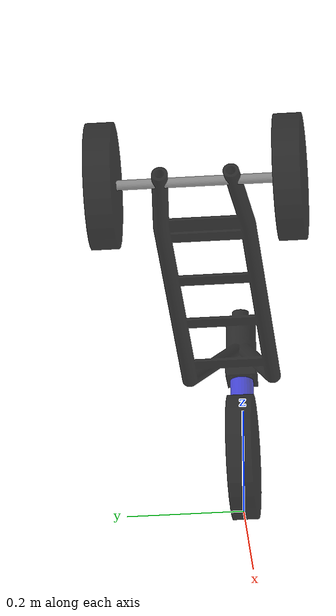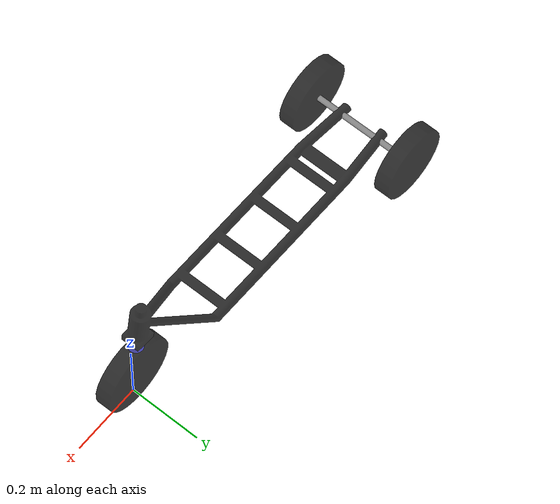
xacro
<?xml version="1.0"?>

<robot name="scooter" xmlns:xacro="https://www.ros.org/wiki/xacro">

    <material name='black'>
        <color rgba="0 0 0 0.8"/>
    </material>
    <material name='gray'>
        <color rgba="0.4 0.4 0.4 0.7"/>
    </material>
    <material name='blue'>
        <color rgba="0 0 0.8 0.7"/>
    </material>

    <xacro:property name="rad_front_wheel" value="${0.216/2}" />
    <xacro:property name="thick_wheel" value="0.044" />
    <xacro:property name="thick_steering" value="0.02" />

    <!-- base_link -->
    <link name="base_link"/>

    <!-- steering_link -->
    <xacro:property name="alpha" value="${80 * pi / 180}" />
    <xacro:property name="steering_length" value="${0.2}" />

    <link name="steering_link">
        <visual>
            <geometry>
                <cylinder radius="${thick_steering}" length="${steering_length}"/>
            </geometry>
            <origin xyz="0.0 0.0 0.0" rpy="0.0 0.0 0.0"/>
            <material name='blue'/>
        </visual>

        <collision>
            <geometry>
                <cylinder radius="${thick_steering}" length="${steering_length}"/>
            </geometry>
            <origin xyz="0.0 0.0 0.0" rpy="0.0 0.0 0.0"/>
        </collision>
    </link>

        <joint name="front_wheel_to_steering_joint" type="revolute">
            <parent link="base_link"/>
            <child link="steering_link"/>
            <origin xyz="-${(steering_length/2 * cos(alpha))} 0.0 ${(steering_length/2 * sin(alpha)) + rad_front_wheel}" rpy="0.0 -${pi/2 - alpha} 0.0"/>
            <limit lower="-${pi/4}" upper="${pi/4}" effort="0.0" velocity="0.0"/>
            <axis xyz="0 0 1"/>
        </joint>

    <!-- front wheel -->
    <link name="front_wheel_link">
        <visual>
            <geometry>
                <cylinder length="${thick_wheel}" radius="${rad_front_wheel}"/>
            </geometry>
            <origin xyz="0.0 0.0 0.0" rpy="${pi/2} 0.0 0.0"/>
            <material name='black'/>
        </visual>

        <collision>
            <geometry>
                <cylinder length="${thick_wheel}" radius="${rad_front_wheel}"/>
            </geometry>
            <origin xyz="0.0 0.0 0.0" rpy="${pi/2} 0.0 0.0"/>
        </collision>
    </link>

        <joint name="base_to_front_joint" type="continuous">
            <parent link="steering_link"/>
            <child link="front_wheel_link"/>
            <origin xyz="0.0 0.0 -${steering_length/2}" rpy="0.0 0.0 0.0"/>
            <axis xyz="0 1 0"/>
        </joint>

    <!-- frame_link -->

    <xacro:property name="scale" value="${0.01}" />

    <link name="frame_link">
        <visual>
        <geometry>
            <mesh filename="package://autonomous-scooter/description/meshes/frame.stl" scale="${scale} ${scale} ${scale}"/>
        </geometry>
        <material name='black'/>
        <origin xyz="0.0 0.0 0.0" rpy="${pi/2} ${2* pi/180} ${pi}"/>
        </visual>

    </link>

    <joint name="base_to_frame_joint" type="fixed">
        <parent link="base_link"/>
        <child link="frame_link"/>
        <origin xyz="-0.728 0.0 0.109" rpy="0.0 0.0 0.0"/>
    </joint>

    <!-- back axis -->
    <xacro:property name="length_back_axis" value="0.3" />
    <xacro:property name="rad_back_wheel" value="${0.203/2}" />

    <link name="axis_link">
        <visual>
            <geometry>
                <cylinder radius="0.008" length="${length_back_axis}"/>
            </geometry>
            <origin xyz="0.0 0.0 0.0" rpy="${pi/2} 0.0 0.0"/>
            <material name='gray'/>
        </visual>

        <collision>
            <geometry>
                <cylinder radius="0.01" length="${length_back_axis}"/>
            </geometry>
            <origin xyz="0.0 0.0 0.0" rpy="${pi/2} 0.0 0.0"/>
        </collision>
    </link>

        <joint name="axis_joint" type="fixed">
            <parent link="frame_link"/>
            <child link="axis_link"/>
            <origin xyz="-0.14 0.0 -0.008" rpy="0.0 0.0 0.0"/>
        </joint>

    <!-- back wheel left -->

    <link name="back_wheel_left_link">
        <visual>
            <geometry>
                <cylinder length="${thick_wheel}" radius="${rad_back_wheel}"/>
            </geometry>
            <origin xyz="0.0 0.0 0.0" rpy="0.0 0.0 0.0"/>
            <material name='black'/>
        </visual>

        <collision>
            <geometry>
                <cylinder length="${thick_wheel}" radius="${rad_back_wheel}"/>
            </geometry>
            <origin xyz="0.0 0.0 0.0" rpy="0.0 0.0 0.0"/>
        </collision>
    </link>

        <joint name="base_to_back_left_joint" type="continuous">
            <parent link="axis_link"/>
            <child link="back_wheel_left_link"/>
            <origin xyz="0 ${length_back_axis/2} 0.0" rpy="${pi/2} 0.0 0.0"/>
            <axis xyz="0 0 1"/>
        </joint>

    <!-- back wheel right -->
    <link name="back_wheel_right_link">
        <visual>
            <geometry>
                <cylinder length="${thick_wheel}" radius="${rad_back_wheel}"/>
            </geometry>
            <origin xyz="0.0 0.0 0.0" rpy="0.0 0.0 0.0"/>
            <material name='black'/>
        </visual>

        <collision>
            <geometry>
                <cylinder length="${thick_wheel}" radius="${rad_back_wheel}"/>
            </geometry>
            <origin xyz="0.0 0.0 0.0" rpy="0.0 0.0 0.0"/>
        </collision>

    </link>

        <joint name="base_to_back_right_joint" type="continuous">
            <parent link="axis_link"/>
            <child link="back_wheel_right_link"/>
            <origin xyz="0.0 -${length_back_axis / 2} 0.0" rpy="${pi/2} 0.0 0.0"/>
            <axis xyz="0 0 1"/>
        </joint>

</robot>
